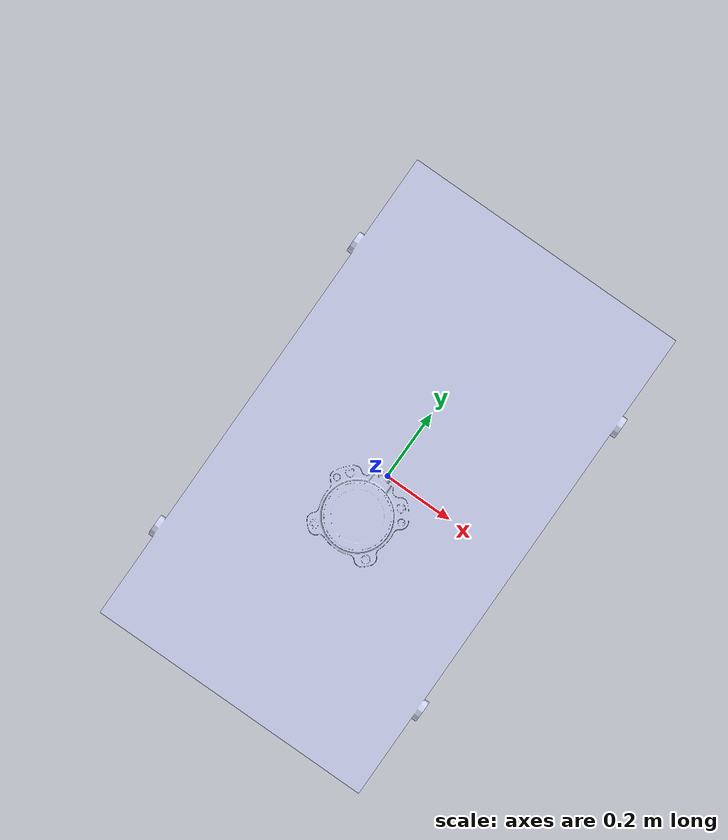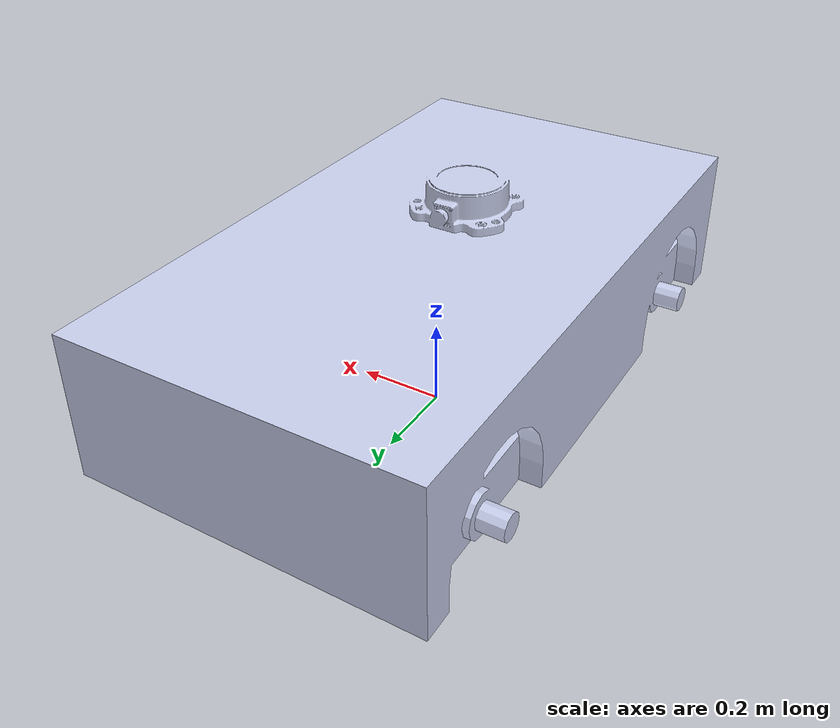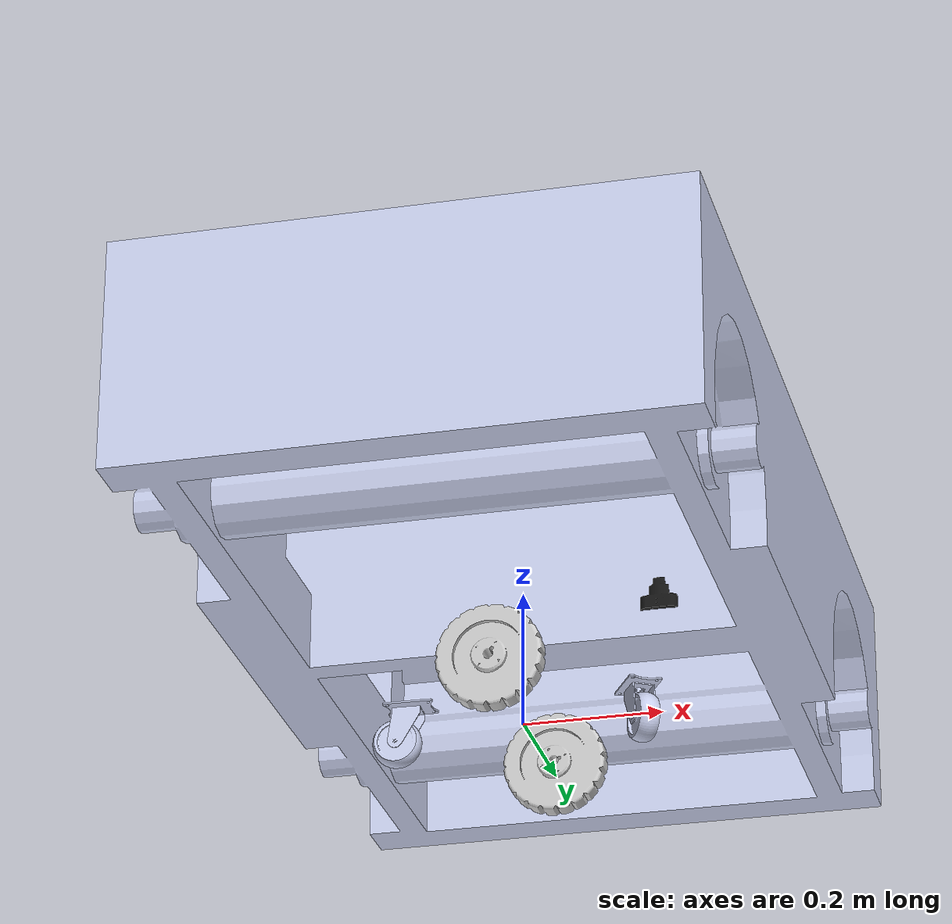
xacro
<?xml version="1.0"?>
<robot xmlns:xacro="http://www.ros.org/wiki/xacro" name="robot">

  <!-- Include files -->
  <xacro:include filename="$(find robot_description)/urdf/properties.xacro" />
  <xacro:include filename="$(find robot_description)/urdf/materials.xacro" />
  <xacro:include filename="$(find robot_description)/urdf/macros.xacro" />

  <!-- Base Link -->
  <link name="base_link">
    <inertial>
      <origin xyz="${base_link_com_x} ${base_link_com_y} ${base_link_com_z}" rpy="0 0 0" />
      <mass value="${base_link_mass}" />
      <inertia
        ixx="${base_link_ixx}" ixy="${base_link_ixy}" ixz="${base_link_ixz}"
        iyy="${base_link_iyy}" iyz="${base_link_iyz}" izz="${base_link_izz}" />
    </inertial>
    <visual>
      <origin xyz="0 0 0" rpy="0 0 0" />
      <geometry>
        <mesh filename="file://$(find robot_description)/meshes/base_link.STL" />
      </geometry>
      <material name="base_material"/>
    </visual>
    <collision>
      <origin xyz="0 0 0" rpy="0 0 0" />
      <geometry>
        <mesh filename="file://$(find robot_description)/meshes/base_link.STL" />
      </geometry>
    </collision>
  </link>

  <!-- Right Wheel -->
  <xacro:wheel_link name="Right_wheel" mass="${right_wheel_mass}" com_x="${right_wheel_com_x}" com_y="${right_wheel_com_y}" com_z="${right_wheel_com_z}"
                    ixx="${right_wheel_ixx}" ixy="${right_wheel_ixy}" ixz="${right_wheel_ixz}"
                    iyy="${right_wheel_iyy}" iyz="${right_wheel_iyz}" izz="${right_wheel_izz}"
                    mesh_filename="file://$(find robot_description)/meshes/Right_wheel_link.STL" />

  <xacro:wheel_joint name="Right_wheel" parent="base_link" x="0" y="-${wheel_y_offset}" z="${wheel_z_offset}" axis="0 -1 0" />

  <!-- Left Wheel -->
  <xacro:wheel_link name="Left_wheel" mass="${left_wheel_mass}" com_x="${left_wheel_com_x}" com_y="${left_wheel_com_y}" com_z="${left_wheel_com_z}"
                    ixx="${left_wheel_ixx}" ixy="${left_wheel_ixy}" ixz="${left_wheel_ixz}"
                    iyy="${left_wheel_iyy}" iyz="${left_wheel_iyz}" izz="${left_wheel_izz}"
                    mesh_filename="file://$(find robot_description)/meshes/Left_wheel_link.STL" />

  <xacro:wheel_joint name="Left_wheel" parent="base_link" x="0" y="${wheel_y_offset}" z="${wheel_z_offset}" axis="0 1 0" />

  <!-- Back MDW Frame -->
  <xacro:mecanum_wheel_frame name="Back_MDW_frame" mass="${back_mdw_frame_mass}"
                           com_x="${back_mdw_frame_com_x}" com_y="${back_mdw_frame_com_y}" com_z="${back_mdw_frame_com_z}"
                           ixx="${back_mdw_frame_ixx}" ixy="${back_mdw_frame_ixy}" ixz="${back_mdw_frame_ixz}"
                           iyy="${back_mdw_frame_iyy}" iyz="${back_mdw_frame_iyz}" izz="${back_mdw_frame_izz}"
                           mesh_filename="file://$(find robot_description)/meshes/Back_MDW_frame_link.STL" />

  <xacro:mecanum_frame_joint name="Back_MDW_frame" parent="base_link" x="-${mdw_x_offset}" y="0" z="${mdw_z_offset}" />

  <!-- Back MDW Wheel -->
  <xacro:mecanum_wheel name="Back_MDW_wheel" mass="${back_mdw_wheel_mass}"
                      ixx="${back_mdw_wheel_ixx}" ixy="${back_mdw_wheel_ixy}" ixz="${back_mdw_wheel_ixz}"
                      iyy="${back_mdw_wheel_iyy}" iyz="${back_mdw_wheel_iyz}" izz="${back_mdw_wheel_izz}"
                      mesh_filename="file://$(find robot_description)/meshes/Back_MDW_wheel_link.STL" />

  <xacro:mecanum_wheel_joint name="Back_MDW_wheel" parent="Back_MDW_frame_link"
                           x="${back_mdw_wheel_x}" y="${back_mdw_wheel_y}" z="${back_mdw_wheel_z}"
                           axis_x="${back_mdw_wheel_axis_x}" axis_y="0" axis_z="${back_mdw_wheel_axis_z}" />

  <!-- Front MDW Frame -->
  <xacro:mecanum_wheel_frame name="Front_MDW_frame" mass="${front_mdw_frame_mass}"
                           com_x="${front_mdw_frame_com_x}" com_y="${front_mdw_frame_com_y}" com_z="${front_mdw_frame_com_z}"
                           ixx="${front_mdw_frame_ixx}" ixy="${front_mdw_frame_ixy}" ixz="${front_mdw_frame_ixz}"
                           iyy="${front_mdw_frame_iyy}" iyz="${front_mdw_frame_iyz}" izz="${front_mdw_frame_izz}"
                           mesh_filename="file://$(find robot_description)/meshes/Front_MDW_frame_link.STL" />

  <xacro:mecanum_frame_joint name="Front_MDW_frame" parent="base_link" x="${mdw_x_offset}" y="0" z="${mdw_z_offset}" />

  <!-- Front MDW Wheel -->
  <xacro:mecanum_wheel name="Front_MDW_wheel" mass="${front_mdw_wheel_mass}"
                      ixx="${front_mdw_wheel_ixx}" ixy="${front_mdw_wheel_ixy}" ixz="${front_mdw_wheel_ixz}"
                      iyy="${front_mdw_wheel_iyy}" iyz="${front_mdw_wheel_iyz}" izz="${front_mdw_wheel_izz}"
                      mesh_filename="file://$(find robot_description)/meshes/Front_MDW_wheel_link.STL" />

  <xacro:mecanum_wheel_joint name="Front_MDW_wheel" parent="Front_MDW_frame_link"
                           x="${front_mdw_wheel_x}" y="${front_mdw_wheel_y}" z="${front_mdw_wheel_z}"
                           axis_x="${front_mdw_wheel_axis_x}" axis_y="0" axis_z="${front_mdw_wheel_axis_z}" />

  <!-- IMU Link -->
  <xacro:sensor_link name="IMU" mass="${imu_mass}"
                    com_x="${imu_com_x}" com_y="${imu_com_y}" com_z="${imu_com_z}"
                    ixx="${imu_ixx}" ixy="${imu_ixy}" ixz="${imu_ixz}"
                    iyy="${imu_iyy}" iyz="${imu_iyz}" izz="${imu_izz}"
                    color="0.79216 0.81961 0.93333"
                    mesh_filename="file://$(find robot_description)/meshes/IMU_link.STL" />

  <xacro:fixed_joint name="IMU" parent="base_link"
                    x="${imu_x}" y="${imu_y}" z="${imu_z}"
                    roll="${pi/2}" pitch="0" yaw="${imu_yaw}" />

  <!-- Lidar Link -->
  <xacro:sensor_link name="Lidar" mass="${lidar_mass}"
                    com_x="${lidar_com_x}" com_y="${lidar_com_y}" com_z="${lidar_com_z}"
                    ixx="${lidar_ixx}" ixy="${lidar_ixy}" ixz="${lidar_ixz}"
                    iyy="${lidar_iyy}" iyz="${lidar_iyz}" izz="${lidar_izz}"
                    color="0.082353 0.082353 0.082353"
                    mesh_filename="file://$(find robot_description)/meshes/Lidar_link.STL" />

  <xacro:continuous_joint name="Lidar" parent="base_link"
                         x="${lidar_x}" y="${lidar_y}" z="${lidar_z}"
                         roll="${pi/2}" pitch="0" yaw="${lidar_yaw}"
                         axis="0 1 0" />

  <!-- Add Ignition plugins for simulation -->
  <gazebo>
    <plugin filename="ignition-gazebo-diff-drive-system" name="ignition::gazebo::systems::DiffDrive">
      <left_joint>Left_wheel_Axis</left_joint>
      <right_joint>Right_wheel_Axis</right_joint>
      <wheel_separation>${wheel_y_offset * 2}</wheel_separation>
      <wheel_radius>${wheel_radius}</wheel_radius>
      <odom_publish_frequency>50</odom_publish_frequency>
      <max_linear_acceleration>1.0</max_linear_acceleration>
      <min_linear_acceleration>-1.0</min_linear_acceleration>
      <max_angular_acceleration>2.0</max_angular_acceleration>
      <min_angular_acceleration>-2.0</min_angular_acceleration>
      <max_linear_velocity>0.5</max_linear_velocity>
      <min_linear_velocity>-0.5</min_linear_velocity>
      <max_angular_velocity>1.0</max_angular_velocity>
      <min_angular_velocity>-1.0</min_angular_velocity>
      <topic>cmd_vel</topic>
      <frame_id>odom</frame_id>
      <child_frame_id>base_link</child_frame_id>
    </plugin>
  </gazebo>

  <!-- Add lidar plugin -->
  <gazebo reference="Lidar_link">
    <sensor name="lidar" type="gpu_lidar">
      <pose>0 0 0 0 0 0</pose>
      <topic>scan</topic>
      <update_rate>10</update_rate>
      <ray>
        <scan>
          <horizontal>
            <samples>360</samples>
            <resolution>1</resolution>
            <min_angle>0</min_angle>
            <max_angle>${2.0 * pi}</max_angle>
          </horizontal>
        </scan>
        <range>
          <min>0.1</min>
          <max>12.0</max>
          <resolution>0.01</resolution>
        </range>
        <noise>
          <type>gaussian</type>
          <mean>0.0</mean>
          <stddev>0.01</stddev>
        </noise>
      </ray>
      <always_on>1</always_on>
      <visualize>true</visualize>
    </sensor>
  </gazebo>

  <!-- Add IMU plugin -->
  <gazebo reference="IMU_link">
    <sensor name="imu_sensor" type="imu">
      <pose>0 0 0 0 0 0</pose>
      <topic>imu</topic>
      <always_on>1</always_on>
      <update_rate>100</update_rate>
      <visualize>true</visualize>
      <imu>
        <angular_velocity>
          <x>
            <noise type="gaussian">
              <mean>0.0</mean>
              <stddev>2e-4</stddev>
              <bias_mean>0.0000075</bias_mean>
              <bias_stddev>0.0000008</bias_stddev>
            </noise>
          </x>
          <y>
            <noise type="gaussian">
              <mean>0.0</mean>
              <stddev>2e-4</stddev>
              <bias_mean>0.0000075</bias_mean>
              <bias_stddev>0.0000008</bias_stddev>
            </noise>
          </y>
          <z>
            <noise type="gaussian">
              <mean>0.0</mean>
              <stddev>2e-4</stddev>
              <bias_mean>0.0000075</bias_mean>
              <bias_stddev>0.0000008</bias_stddev>
            </noise>
          </z>
        </angular_velocity>
        <linear_acceleration>
          <x>
            <noise type="gaussian">
              <mean>0.0</mean>
              <stddev>1.7e-2</stddev>
              <bias_mean>0.1</bias_mean>
              <bias_stddev>0.001</bias_stddev>
            </noise>
          </x>
          <y>
            <noise type="gaussian">
              <mean>0.0</mean>
              <stddev>1.7e-2</stddev>
              <bias_mean>0.1</bias_mean>
              <bias_stddev>0.001</bias_stddev>
            </noise>
          </y>
          <z>
            <noise type="gaussian">
              <mean>0.0</mean>
              <stddev>1.7e-2</stddev>
              <bias_mean>0.1</bias_mean>
              <bias_stddev>0.001</bias_stddev>
            </noise>
          </z>
        </linear_acceleration>
      </imu>
    </sensor>
  </gazebo>

</robot>

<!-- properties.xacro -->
<robot xmlns:xacro="http://www.ros.org/wiki/xacro">

  <!-- Math constants -->
  <xacro:property name="pi" value="3.1415926535897931" />

  <!-- Base link properties -->
  <xacro:property name="base_link_mass" value="13.3704893846402" />
  <xacro:property name="base_link_com_x" value="0.00134691271357942" />
  <xacro:property name="base_link_com_y" value="-2.52657545412177E-05" />
  <xacro:property name="base_link_com_z" value="0.472082902102997" />
  <xacro:property name="base_link_ixx" value="0.389862215162195" />
  <xacro:property name="base_link_ixy" value="3.73442510141833E-05" />
  <xacro:property name="base_link_ixz" value="0.00489552498258593" />
  <xacro:property name="base_link_iyy" value="0.361904289007973" />
  <xacro:property name="base_link_iyz" value="-0.000207680006355546" />
  <xacro:property name="base_link_izz" value="0.413509038616086" />

  <!-- Main wheel properties -->
  <xacro:property name="wheel_y_offset" value="0.212229686537745" />
  <xacro:property name="wheel_z_offset" value="0.0183338534091537" />
  <xacro:property name="wheel_radius" value="0.1" />

  <!-- Right wheel properties -->
  <xacro:property name="right_wheel_mass" value="0.415938182180326" />
  <xacro:property name="right_wheel_com_x" value="-8.93952047617032E-06" />
  <xacro:property name="right_wheel_com_y" value="0.0150000793737486" />
  <xacro:property name="right_wheel_com_z" value="-1.16037505515365E-05" />
  <xacro:property name="right_wheel_ixx" value="0.000652914571865517" />
  <xacro:property name="right_wheel_ixy" value="1.4107340831946E-10" />
  <xacro:property name="right_wheel_ixz" value="2.68048423358216E-08" />
  <xacro:property name="right_wheel_iyy" value="0.00125445432257594" />
  <xacro:property name="right_wheel_iyz" value="-3.56322307486116E-12" />
  <xacro:property name="right_wheel_izz" value="0.000652929076357562" />

  <!-- Left wheel properties -->
  <xacro:property name="left_wheel_mass" value="0.415938181435814" />
  <xacro:property name="left_wheel_com_x" value="-1.36983615786788E-05" />
  <xacro:property name="left_wheel_com_y" value="-0.0149999206509359" />
  <xacro:property name="left_wheel_com_z" value="-5.18816478300987E-06" />
  <xacro:property name="left_wheel_ixx" value="0.000652942508895541" />
  <xacro:property name="left_wheel_ixy" value="1.18132939340405E-10" />
  <xacro:property name="left_wheel_ixz" value="1.85257141794357E-08" />
  <xacro:property name="left_wheel_iyy" value="0.00125445432188265" />
  <xacro:property name="left_wheel_iyz" value="-7.68116274070127E-11" />
  <xacro:property name="left_wheel_izz" value="0.000652901138625573" />

  <!-- Mecanum drive wheel (MDW) common properties -->
  <xacro:property name="mdw_x_offset" value="0.165" />
  <xacro:property name="mdw_z_offset" value="0.0429999999999998" />
  <xacro:property name="mdw_yaw" value="-0.0478770767270203" />

  <!-- Back MDW frame properties -->
  <xacro:property name="back_mdw_frame_mass" value="0.0181670542093644" />
  <xacro:property name="back_mdw_frame_com_x" value="-0.00475029171679112" />
  <xacro:property name="back_mdw_frame_com_y" value="-0.0159989183073881" />
  <xacro:property name="back_mdw_frame_com_z" value="0.0002537425043838" />
  <xacro:property name="back_mdw_frame_ixx" value="5.72579167306931E-06" />
  <xacro:property name="back_mdw_frame_ixy" value="-7.35212482813745E-07" />
  <xacro:property name="back_mdw_frame_ixz" value="3.8141159495066E-08" />
  <xacro:property name="back_mdw_frame_iyy" value="6.85382817075558E-06" />
  <xacro:property name="back_mdw_frame_iyz" value="6.10228259069868E-08" />
  <xacro:property name="back_mdw_frame_izz" value="6.26356011268607E-06" />

  <!-- Back MDW wheel properties -->
  <xacro:property name="back_mdw_wheel_mass" value="0.0803777244026511" />
  <xacro:property name="back_mdw_wheel_x" value="-0.0186165206066295" />
  <xacro:property name="back_mdw_wheel_y" value="-0.0552708014281127" />
  <xacro:property name="back_mdw_wheel_z" value="0.0019464470498146" />
  <xacro:property name="back_mdw_wheel_axis_x" value="-0.0827102895528008" />
  <xacro:property name="back_mdw_wheel_axis_z" value="-0.996573634009094" />
  <xacro:property name="back_mdw_wheel_ixx" value="2.90627993874311E-05" />
  <xacro:property name="back_mdw_wheel_ixy" value="9.93120762310388E-22" />
  <xacro:property name="back_mdw_wheel_ixz" value="1.82015378594515E-06" />
  <xacro:property name="back_mdw_wheel_iyy" value="2.89117363434887E-05" />
  <xacro:property name="back_mdw_wheel_iyz" value="7.47994503296913E-22" />
  <xacro:property name="back_mdw_wheel_izz" value="5.08427111075994E-05" />

  <!-- Front MDW frame properties -->
  <xacro:property name="front_mdw_frame_mass" value="0.0181670542093644" />
  <xacro:property name="front_mdw_frame_com_x" value="0.00248501109838795" />
  <xacro:property name="front_mdw_frame_com_y" value="-0.0159989183073879" />
  <xacro:property name="front_mdw_frame_com_z" value="0.00405639944951833" />
  <xacro:property name="front_mdw_frame_ixx" value="6.10969442173415E-06" />
  <xacro:property name="front_mdw_frame_ixy" value="4.0373691414436E-07" />
  <xacro:property name="front_mdw_frame_ixz" value="-2.46016685875738E-07" />
  <xacro:property name="front_mdw_frame_iyy" value="6.85382817075558E-06" />
  <xacro:property name="front_mdw_frame_iyz" value="6.1746067431377E-07" />
  <xacro:property name="front_mdw_frame_izz" value="5.87965736402121E-06" />

  <!-- Front MDW wheel properties -->
  <xacro:property name="front_mdw_wheel_mass" value="0.0803777244026511" />
  <xacro:property name="front_mdw_wheel_x" value="0.0105759971863268" />
  <xacro:property name="front_mdw_wheel_y" value="-0.0552708014281127" />
  <xacro:property name="front_mdw_wheel_z" value="0.0154438265701736" />
  <xacro:property name="front_mdw_wheel_axis_x" value="-0.83696481718083" />
  <xacro:property name="front_mdw_wheel_axis_z" value="0.547256699183719" />
  <xacro:property name="front_mdw_wheel_ixx" value="4.43804269714061E-05" />
  <xacro:property name="front_mdw_wheel_ixy" value="-1.791097142141E-21" />
  <xacro:property name="front_mdw_wheel_ixz" value="-1.01143374248899E-05" />
  <xacro:property name="front_mdw_wheel_iyy" value="2.89117363434887E-05" />
  <xacro:property name="front_mdw_wheel_iyz" value="1.67995338632247E-21" />
  <xacro:property name="front_mdw_wheel_izz" value="3.55250835236243E-05" />

  <!-- IMU properties -->
  <xacro:property name="imu_mass" value="0.00064128" />
  <xacro:property name="imu_x" value="-0.00486608888305493" />
  <xacro:property name="imu_y" value="-0.0104697509145408" />
  <xacro:property name="imu_z" value="0.129" />
  <xacro:property name="imu_yaw" value="-0.0478770767270203" />
  <xacro:property name="imu_com_x" value="9.133E-05" />
  <xacro:property name="imu_com_y" value="-0.0017303" />
  <xacro:property name="imu_com_z" value="-0.00073244" />
  <xacro:property name="imu_ixx" value="1.1862E-08" />
  <xacro:property name="imu_ixy" value="1.3728E-14" />
  <xacro:property name="imu_ixz" value="1.2576E-13" />
  <xacro:property name="imu_iyy" value="4.4714E-08" />
  <xacro:property name="imu_iyz" value="7.9871E-13" />
  <xacro:property name="imu_izz" value="3.3118E-08" />

  <!-- Lidar properties -->
  <xacro:property name="lidar_mass" value="0.0094944" />
  <xacro:property name="lidar_x" value="0.200500000002106" />
  <xacro:property name="lidar_y" value="0" />
  <xacro:property name="lidar_z" value="0.18466154484571" />
  <xacro:property name="lidar_yaw" value="-0.0478770767270203" />
  <xacro:property name="lidar_com_x" value="-6.7849E-06" />
  <xacro:property name="lidar_com_y" value="-0.0040159" />
  <xacro:property name="lidar_com_z" value="-0.00020001" />
  <xacro:property name="lidar_ixx" value="3.8141E-06" />
  <xacro:property name="lidar_ixy" value="-4.9853E-11" />
  <xacro:property name="lidar_ixz" value="7.157E-11" />
  <xacro:property name="lidar_iyy" value="4.9345E-06" />
  <xacro:property name="lidar_iyz" value="-8.0756E-10" />
  <xacro:property name="lidar_izz" value="3.8153E-06" />

</robot>

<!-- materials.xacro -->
<robot xmlns:xacro="http://www.ros.org/wiki/xacro">

  <!-- Define materials for visual appearance -->
  <material name="base_material">
    <color rgba="0.792156862745098 0.819607843137255 0.933333333333333 1" />
  </material>

  <material name="wheel_material">
    <color rgba="0.796078431372549 0.796078431372549 0.796078431372549 1" />
  </material>

  <material name="lidar_material">
    <color rgba="0.082353 0.082353 0.082353 1" />
  </material>

  <material name="imu_material">
    <color rgba="0.79216 0.81961 0.93333 1" />
  </material>

</robot>

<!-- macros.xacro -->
<robot xmlns:xacro="http://www.ros.org/wiki/xacro">

  <!-- Standard wheel link macro -->
  <xacro:macro name="wheel_link" params="name mass com_x com_y com_z ixx ixy ixz iyy iyz izz mesh_filename">
    <link name="${name}_link">
      <inertial>
        <origin xyz="${com_x} ${com_y} ${com_z}" rpy="0 0 0" />
        <mass value="${mass}" />
        <inertia
          ixx="${ixx}" ixy="${ixy}" ixz="${ixz}"
          iyy="${iyy}" iyz="${iyz}" izz="${izz}" />
      </inertial>
      <visual>
        <origin xyz="0 0 0" rpy="0 0 0" />
        <geometry>
          <mesh filename="${mesh_filename}" />
        </geometry>
        <material name="wheel_material"/>
      </visual>
      <collision>
        <origin xyz="0 0 0" rpy="0 0 0" />
        <geometry>
          <mesh filename="${mesh_filename}" />
        </geometry>
      </collision>
    </link>
  </xacro:macro>

  <!-- Standard wheel joint macro -->
  <xacro:macro name="wheel_joint" params="name parent x y z axis">
    <joint name="${name}_Axis" type="continuous">
      <origin xyz="${x} ${y} ${z}" rpy="0 0 0" />
      <parent link="${parent}" />
      <child link="${name}_link" />
      <axis xyz="${axis}" />
      <limit effort="0" velocity="100" />
      <dynamics damping="0.1" friction="0.1" />
    </joint>
  </xacro:macro>

  <!-- Mecanum wheel frame link macro -->
  <xacro:macro name="mecanum_wheel_frame" params="name mass com_x com_y com_z ixx ixy ixz iyy iyz izz mesh_filename">
    <link name="${name}_link">
      <inertial>
        <origin xyz="${com_x} ${com_y} ${com_z}" rpy="0 0 0" />
        <mass value="${mass}" />
        <inertia
          ixx="${ixx}" ixy="${ixy}" ixz="${ixz}"
          iyy="${iyy}" iyz="${iyz}" izz="${izz}" />
      </inertial>
      <visual>
        <origin xyz="0 0 0" rpy="0 0 0" />
        <geometry>
          <mesh filename="${mesh_filename}" />
        </geometry>
        <material name="base_material"/>
      </visual>
      <collision>
        <origin xyz="0 0 0" rpy="0 0 0" />
        <geometry>
          <mesh filename="${mesh_filename}" />
        </geometry>
      </collision>
    </link>
  </xacro:macro>

  <!-- Mecanum wheel frame joint macro -->
  <xacro:macro name="mecanum_frame_joint" params="name parent x y z">
    <joint name="${name}_Axis" type="continuous">
      <origin xyz="${x} ${y} ${z}" rpy="${pi/2} 0 ${mdw_yaw}" />
      <parent link="${parent}" />
      <child link="${name}_link" />
      <axis xyz="0 1 0" />
      <limit effort="0" velocity="100" />
      <dynamics damping="0.1" friction="0.1" />
    </joint>
  </xacro:macro>

  <!-- Mecanum wheel link macro -->
  <xacro:macro name="mecanum_wheel" params="name mass ixx ixy ixz iyy iyz izz mesh_filename">
    <link name="${name}_link">
      <inertial>
        <origin xyz="0 0 0" rpy="0 0 0" />
        <mass value="${mass}" />
        <inertia
          ixx="${ixx}" ixy="${ixy}" ixz="${ixz}"
          iyy="${iyy}" iyz="${iyz}" izz="${izz}" />
      </inertial>
      <visual>
        <origin xyz="0 0 0" rpy="0 0 0" />
        <geometry>
          <mesh filename="${mesh_filename}" />
        </geometry>
        <material name="base_material"/>
      </visual>
      <collision>
        <origin xyz="0 0 0" rpy="0 0 0" />
        <geometry>
          <mesh filename="${mesh_filename}" />
        </geometry>
      </collision>
    </link>
  </xacro:macro>

  <!-- Mecanum wheel joint macro -->
  <xacro:macro name="mecanum_wheel_joint" params="name parent x y z axis_x axis_y axis_z">
    <joint name="${name}_Axis" type="continuous">
      <origin xyz="${x} ${y} ${z}" rpy="0 0 0" />
      <parent link="${parent}" />
      <child link="${name}_link" />
      <axis xyz="${axis_x} ${axis_y} ${axis_z}" />
      <limit effort="0" velocity="100" />
      <dynamics damping="0.1" friction="0.1" />
    </joint>
  </xacro:macro>

  <!-- Sensor link macro (like IMU, Lidar) -->
  <xacro:macro name="sensor_link" params="name mass com_x com_y com_z ixx ixy ixz iyy iyz izz color mesh_filename">
    <link name="${name}_link">
      <inertial>
        <origin xyz="${com_x} ${com_y} ${com_z}" rpy="0 0 0" />
        <mass value="${mass}" />
        <inertia
          ixx="${ixx}" ixy="${ixy}" ixz="${ixz}"
          iyy="${iyy}" iyz="${iyz}" izz="${izz}" />
      </inertial>
      <visual>
        <origin xyz="0 0 0" rpy="0 0 0" />
        <geometry>
          <mesh filename="${mesh_filename}" />
        </geometry>
        <material name="">
          <color rgba="${color} 1" />
        </material>
      </visual>
      <collision>
        <origin xyz="0 0 0" rpy="0 0 0" />
        <geometry>
          <mesh filename="${mesh_filename}" />
        </geometry>
      </collision>
    </link>
  </xacro:macro>

  <!-- Fixed joint macro -->
  <xacro:macro name="fixed_joint" params="name parent x y z roll pitch yaw">
    <joint name="${name}_link" type="fixed">
      <origin xyz="${x} ${y} ${z}" rpy="${roll} ${pitch} ${yaw}" />
      <parent link="${parent}" />
      <child link="${name}_link" />
      <axis xyz="0 0 0" />
    </joint>
  </xacro:macro>

  <!-- Continuous joint macro -->
  <xacro:macro name="continuous_joint" params="name parent x y z roll pitch yaw axis">
    <joint name="${name}_link" type="continuous">
      <origin xyz="${x} ${y} ${z}" rpy="${roll} ${pitch} ${yaw}" />
      <parent link="${parent}" />
      <child link="${name}_link" />
      <axis xyz="${axis}" />
    </joint>
  </xacro:macro>

</robot>
